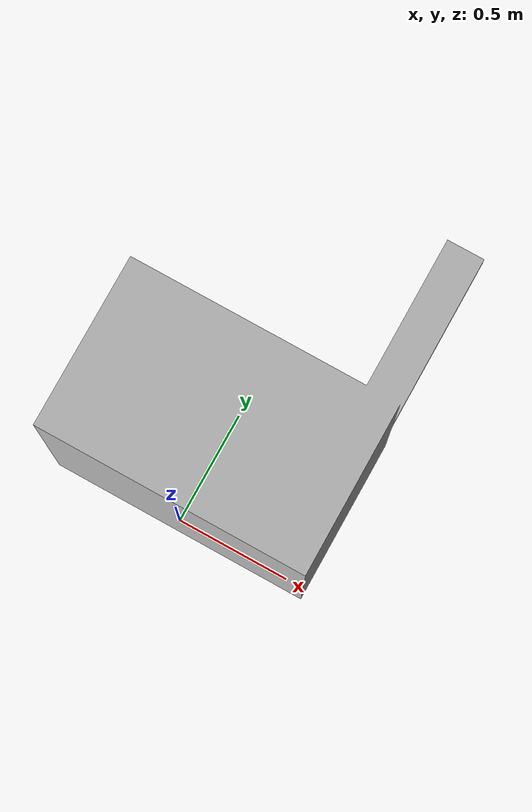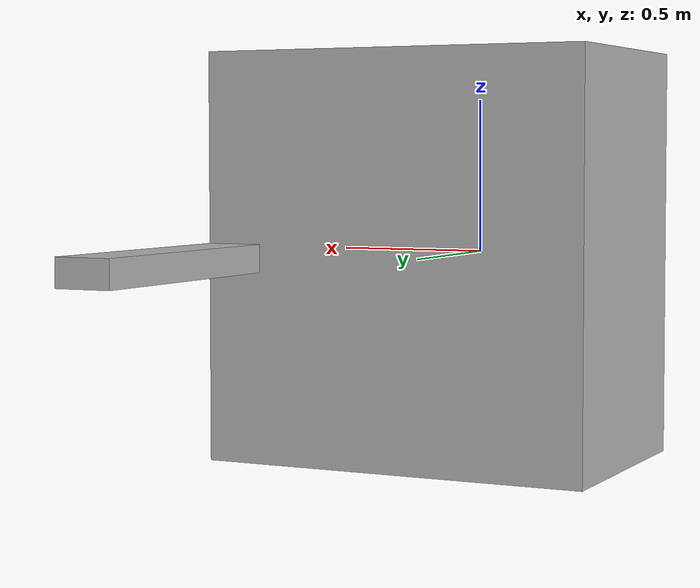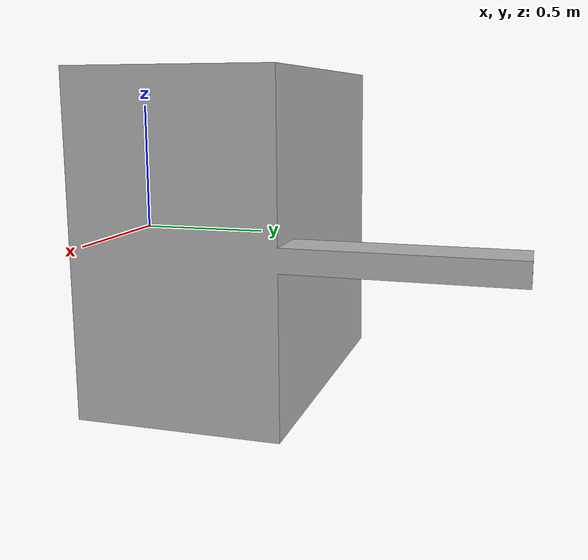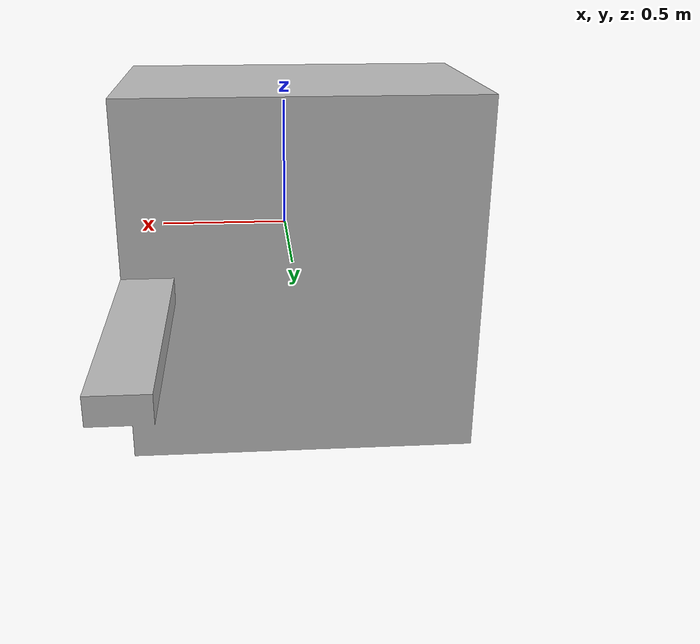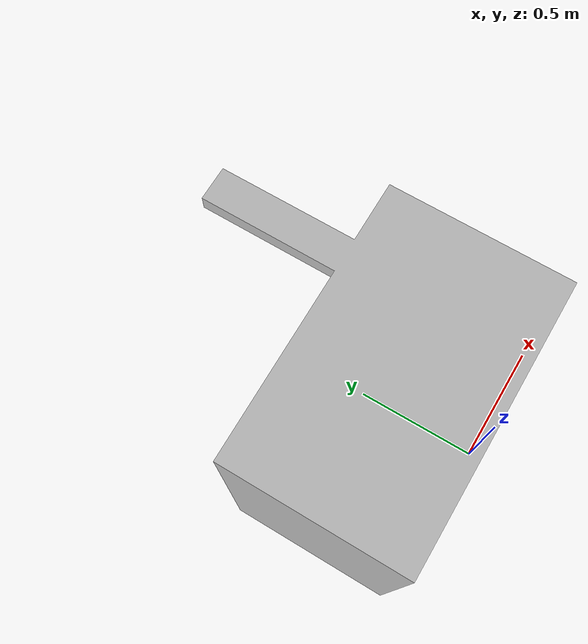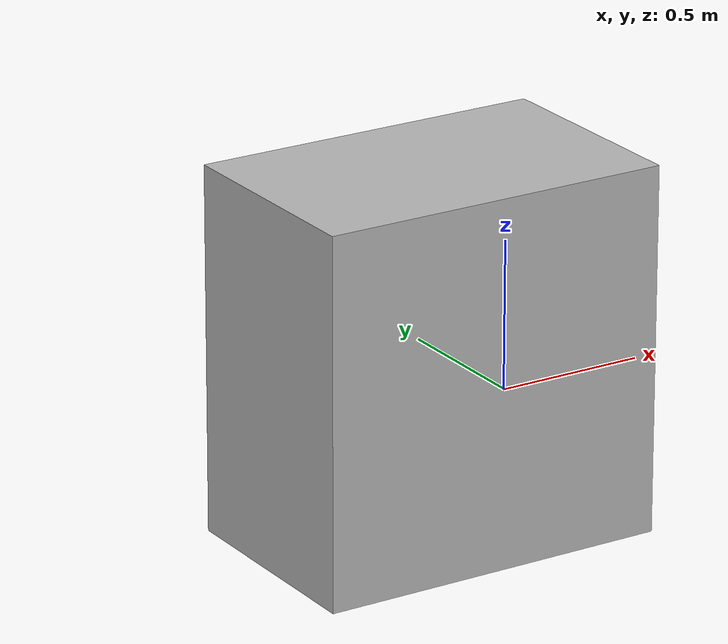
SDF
<?xml version="1.0"?>
<sdf version="1.6">
    <model name="robot_cell">
        <pose>0 0 0 0 0 0</pose>
         <static>true</static>

         <link name="robot_cell_link">
            <pose>0 0 0 0 0 0</pose>
            <visual name="visual">
              <pose>0 0 0 0 0 0</pose>
              <geometry>
	              <mesh>
	                <uri>file:///home/abhishek/catkin_ws/src/macs_dual_arm/meshes/robot_cell/visual/robot_cell.dae</uri>
	              </mesh>
              </geometry>
            </visual>

            <collision name="collision">
              <pose>0.58 0 -0.6225 0 -1.5707 0</pose>
              <geometry>
	              <mesh>
	                <uri>file:///home/abhishek/catkin_ws/src/macs_dual_arm/meshes/robot_cell/collision/robot_cell_simplified.stl</uri>
                    <scale>0.001 0.001 0.001</scale>
	              </mesh>
              </geometry>
            </collision>
         </link>

     </model>
</sdf>
